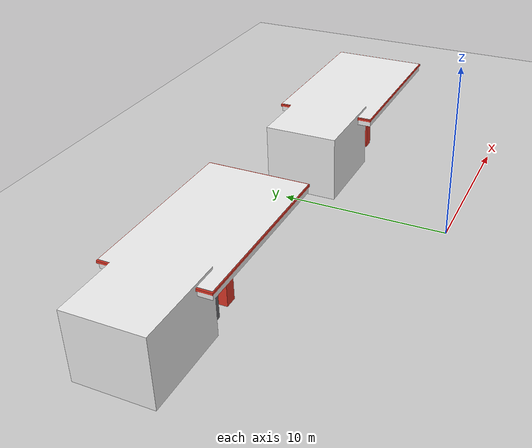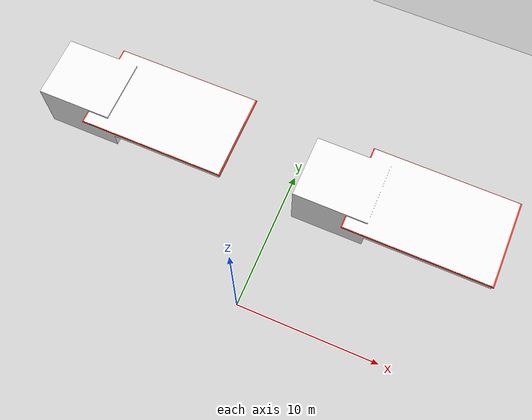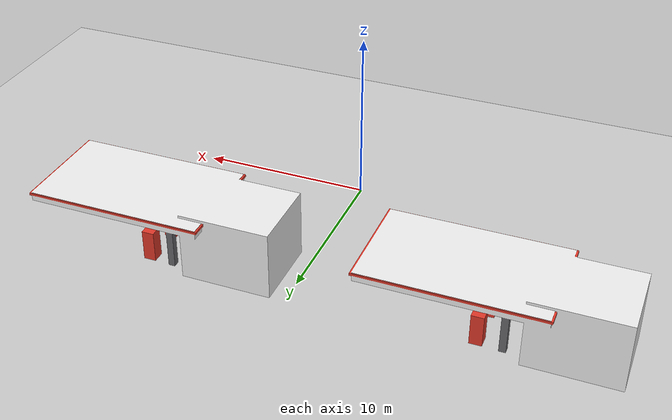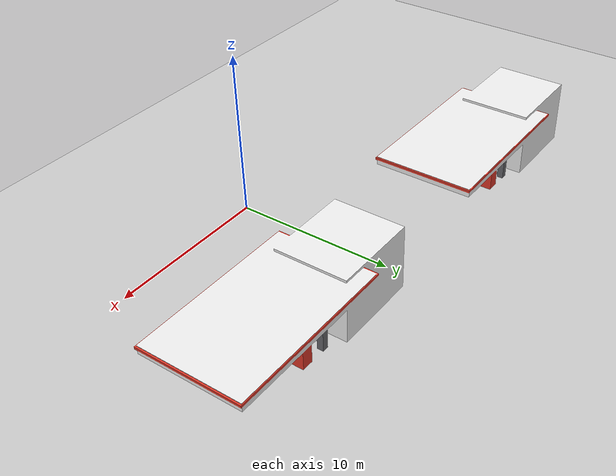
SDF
<sdf version="1.6">
 <world name="default">
  <light name="sun" type="directional">
   <pose>0 0 10 0 -0 0</pose>
   <diffuse>0.8 0.8 0.8 1</diffuse>
   <specular>0.1 0.1 0.1 1</specular>
   <attenuation>
    <range>1000</range>
    <constant>0.9</constant>
    <linear>0.01</linear>
    <quadratic>0.001</quadratic>
   </attenuation>
   <direction>-0.5 0.5 -1</direction>
  </light>
  <model name="ground_plane">
   <static>1</static>
   <link name="link">
    <collision name="collision">
     <geometry><plane><normal>0 0 1</normal><size>100 100</size></plane></geometry>
     <surface><friction><ode><mu>100</mu><mu2>50</mu2></ode></friction></surface>
    </collision>
    <visual name="visual">
     <cast_shadows>0</cast_shadows>
     <geometry><plane><normal>0 0 1</normal><size>100 100</size></plane></geometry>
     <material>
      <script><uri>file://media/materials/scripts/gazebo.material</uri><name>Gazebo/Grey</name></script>
     </material>
    </visual>
   </link>
  </model>
  <gravity>0 0 -9.8</gravity>
  <magnetic_field>6e-06 2.3e-05 -4.2e-05</magnetic_field>
  <atmosphere type="adiabatic"/>
  <physics name="default_physics" default="0" type="ode">
   <max_step_size>0.001</max_step_size>
   <real_time_factor>2</real_time_factor>
   <real_time_update_rate>1000</real_time_update_rate>
  </physics>
  <scene><ambient>0.4 0.4 0.4 1</ambient><background>0.7 0.7 0.7 1</background><shadows>1</shadows></scene>
  <spherical_coordinates>
   <surface_model>EARTH_WGS84</surface_model>
   <latitude_deg>0</latitude_deg>
   <longitude_deg>0</longitude_deg>
   <elevation>0</elevation>
   <heading_deg>0</heading_deg>
  </spherical_coordinates>
  <model name="Gas Station">
   <static>1</static>
   <link name="link">
    <collision name="collision">
     <geometry><mesh><uri>model://gas_station/meshes/gas_station.dae</uri><scale>1 1 1</scale></mesh></geometry>
    </collision>
    <visual name="visual">
     <geometry><mesh><uri>model://gas_station/meshes/gas_station.dae</uri><scale>1 1 1</scale></mesh></geometry>
     <material>
      <script>
       <uri>model://gas_station/materials/scripts</uri>
       <uri>model://gas_station/materials/textures</uri>
       <name>GasStation/Diffuse</name>
      </script>
      <shader type="normal_map_object_space"><normal_map>GasStation_Normal.png</normal_map></shader>
     </material>
    </visual>
   </link>
   <pose>-11.5268 9.6559 0 0 -0 0</pose>
  </model>
  <model name="Gas Station_0">
   <static>1</static>
   <link name="link">
    <collision name="collision">
     <geometry><mesh><uri>model://gas_station/meshes/gas_station.dae</uri><scale>1 1 1</scale></mesh></geometry>
    </collision>
    <visual name="visual">
     <geometry><mesh><uri>model://gas_station/meshes/gas_station.dae</uri><scale>1 1 1</scale></mesh></geometry>
     <material>
      <script>
       <uri>model://gas_station/materials/scripts</uri>
       <uri>model://gas_station/materials/textures</uri>
       <name>GasStation/Diffuse</name>
      </script>
      <shader type="normal_map_object_space"><normal_map>GasStation_Normal.png</normal_map></shader>
     </material>
    </visual>
   </link>
   <pose>7.27153 9.43831 0 0 -0 0</pose>
  </model>
 </world>
</sdf>
